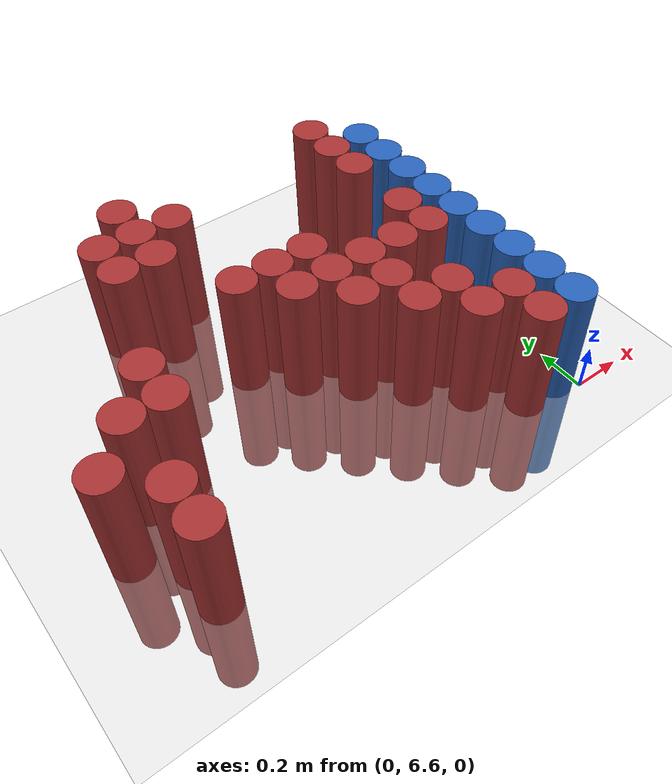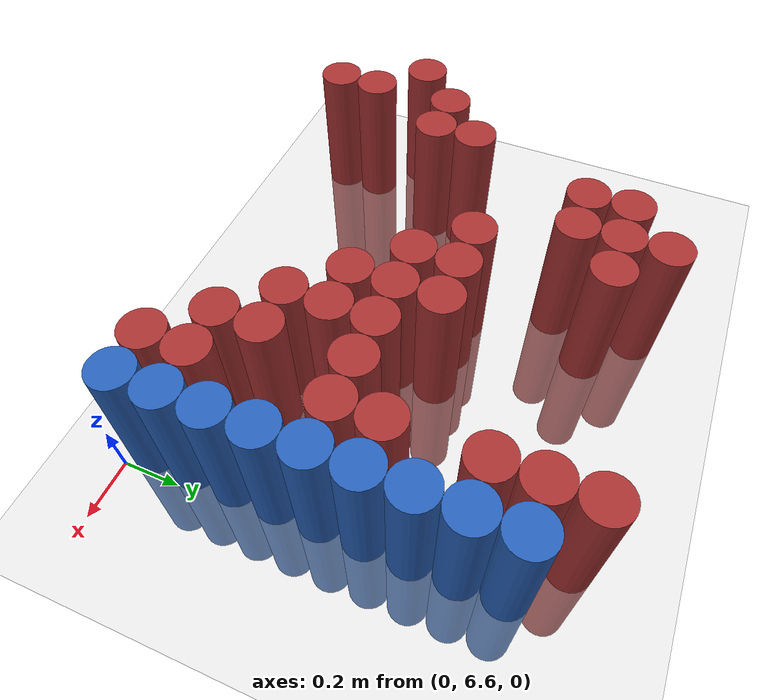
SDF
<sdf version="1.6">
 <world name="default">
  <model name="ground_plane">
   <static>1</static>
   <link name="link">
    <collision name="collision">
     <geometry><plane><normal>0 0 1</normal><size>100 100</size></plane></geometry>
     <surface><friction><ode><mu>100</mu><mu2>50</mu2></ode></friction></surface>
    </collision>
    <visual name="visual">
     <cast_shadows>0</cast_shadows>
     <geometry><plane><normal>0 0 1</normal><size>100 100</size></plane></geometry>
     <material>
      <script><uri>file://media/materials/scripts/gazebo.material</uri><name>Gazebo/Grey</name></script>
     </material>
    </visual>
   </link>
  </model>
  <model name="unit_cylinder_210">
   <static>1</static>
   <pose>-1.725000 6.975000 0.000000 0.000000 0.000000 0.000000</pose>
   <link name="link">
    <inertial>
     <mass>1</mass>
     <inertia><ixx>0.145833</ixx><ixy>0</ixy><ixz>0</ixz><iyy>0.145833</iyy><iyz>0</iyz><izz>0.125</izz></inertia>
    </inertial>
    <collision name="collision">
     <geometry><cylinder><radius>0.075000</radius><length>1</length></cylinder></geometry>
    </collision>
    <visual name="visual">
     <geometry><cylinder><radius>0.075000</radius><length>1</length></cylinder></geometry>
     <material>
      <ambient>0.648000 0.192000 0.192000 1</ambient>
      <diffuse>0.648000 0.192000 0.192000 1</diffuse>
     </material>
     <material>
      <script><name>Gazebo/Grey</name><uri>file://media/materials/scripts/gazebo.material</uri></script>
     </material>
    </visual>
    <sensor name="sensor_contact" type="contact"><contact><collision>collision</collision></contact></sensor>
   </link>
   <plugin filename="gz-sim-touchplugin-system" name="gz::sim::systems::TouchPlugin">
    <target>robot</target>
    <namespace>robot</namespace>
    <time>0.001</time>
    <enabled>true</enabled>
   </plugin>
  </model>
  <model name="unit_cylinder_213">
   <static>1</static>
   <pose>-1.575000 6.675000 0.000000 0.000000 0.000000 0.000000</pose>
   <link name="link">
    <inertial>
     <mass>1</mass>
     <inertia><ixx>0.145833</ixx><ixy>0</ixy><ixz>0</ixz><iyy>0.145833</iyy><iyz>0</iyz><izz>0.125</izz></inertia>
    </inertial>
    <collision name="collision">
     <geometry><cylinder><radius>0.075000</radius><length>1</length></cylinder></geometry>
    </collision>
    <visual name="visual">
     <geometry><cylinder><radius>0.075000</radius><length>1</length></cylinder></geometry>
     <material>
      <ambient>0.648000 0.192000 0.192000 1</ambient>
      <diffuse>0.648000 0.192000 0.192000 1</diffuse>
     </material>
     <material>
      <script><name>Gazebo/Grey</name><uri>file://media/materials/scripts/gazebo.material</uri></script>
     </material>
    </visual>
    <sensor name="sensor_contact" type="contact"><contact><collision>collision</collision></contact></sensor>
   </link>
   <plugin filename="gz-sim-touchplugin-system" name="gz::sim::systems::TouchPlugin">
    <target>robot</target>
    <namespace>robot</namespace>
    <time>0.001</time>
    <enabled>true</enabled>
   </plugin>
  </model>
  <model name="unit_cylinder_214">
   <static>1</static>
   <pose>-1.575000 6.825000 0.000000 0.000000 0.000000 0.000000</pose>
   <link name="link">
    <inertial>
     <mass>1</mass>
     <inertia><ixx>0.145833</ixx><ixy>0</ixy><ixz>0</ixz><iyy>0.145833</iyy><iyz>0</iyz><izz>0.125</izz></inertia>
    </inertial>
    <collision name="collision">
     <geometry><cylinder><radius>0.075000</radius><length>1</length></cylinder></geometry>
    </collision>
    <visual name="visual">
     <geometry><cylinder><radius>0.075000</radius><length>1</length></cylinder></geometry>
     <material>
      <ambient>0.648000 0.192000 0.192000 1</ambient>
      <diffuse>0.648000 0.192000 0.192000 1</diffuse>
     </material>
     <material>
      <script><name>Gazebo/Grey</name><uri>file://media/materials/scripts/gazebo.material</uri></script>
     </material>
    </visual>
    <sensor name="sensor_contact" type="contact"><contact><collision>collision</collision></contact></sensor>
   </link>
   <plugin filename="gz-sim-touchplugin-system" name="gz::sim::systems::TouchPlugin">
    <target>robot</target>
    <namespace>robot</namespace>
    <time>0.001</time>
    <enabled>true</enabled>
   </plugin>
  </model>
  <model name="unit_cylinder_215">
   <static>1</static>
   <pose>-1.575000 7.125000 0.000000 0.000000 0.000000 0.000000</pose>
   <link name="link">
    <inertial>
     <mass>1</mass>
     <inertia><ixx>0.145833</ixx><ixy>0</ixy><ixz>0</ixz><iyy>0.145833</iyy><iyz>0</iyz><izz>0.125</izz></inertia>
    </inertial>
    <collision name="collision">
     <geometry><cylinder><radius>0.075000</radius><length>1</length></cylinder></geometry>
    </collision>
    <visual name="visual">
     <geometry><cylinder><radius>0.075000</radius><length>1</length></cylinder></geometry>
     <material>
      <ambient>0.648000 0.192000 0.192000 1</ambient>
      <diffuse>0.648000 0.192000 0.192000 1</diffuse>
     </material>
     <material>
      <script><name>Gazebo/Grey</name><uri>file://media/materials/scripts/gazebo.material</uri></script>
     </material>
    </visual>
    <sensor name="sensor_contact" type="contact"><contact><collision>collision</collision></contact></sensor>
   </link>
   <plugin filename="gz-sim-touchplugin-system" name="gz::sim::systems::TouchPlugin">
    <target>robot</target>
    <namespace>robot</namespace>
    <time>0.001</time>
    <enabled>true</enabled>
   </plugin>
  </model>
  <model name="unit_cylinder_220">
   <static>1</static>
   <pose>-1.425000 7.125000 0.000000 0.000000 0.000000 0.000000</pose>
   <link name="link">
    <inertial>
     <mass>1</mass>
     <inertia><ixx>0.145833</ixx><ixy>0</ixy><ixz>0</ixz><iyy>0.145833</iyy><iyz>0</iyz><izz>0.125</izz></inertia>
    </inertial>
    <collision name="collision">
     <geometry><cylinder><radius>0.075000</radius><length>1</length></cylinder></geometry>
    </collision>
    <visual name="visual">
     <geometry><cylinder><radius>0.075000</radius><length>1</length></cylinder></geometry>
     <material>
      <ambient>0.648000 0.192000 0.192000 1</ambient>
      <diffuse>0.648000 0.192000 0.192000 1</diffuse>
     </material>
     <material>
      <script><name>Gazebo/Grey</name><uri>file://media/materials/scripts/gazebo.material</uri></script>
     </material>
    </visual>
    <sensor name="sensor_contact" type="contact"><contact><collision>collision</collision></contact></sensor>
   </link>
   <plugin filename="gz-sim-touchplugin-system" name="gz::sim::systems::TouchPlugin">
    <target>robot</target>
    <namespace>robot</namespace>
    <time>0.001</time>
    <enabled>true</enabled>
   </plugin>
  </model>
  <model name="unit_cylinder_221">
   <static>1</static>
   <pose>-1.425000 7.275000 0.000000 0.000000 0.000000 0.000000</pose>
   <link name="link">
    <inertial>
     <mass>1</mass>
     <inertia><ixx>0.145833</ixx><ixy>0</ixy><ixz>0</ixz><iyy>0.145833</iyy><iyz>0</iyz><izz>0.125</izz></inertia>
    </inertial>
    <collision name="collision">
     <geometry><cylinder><radius>0.075000</radius><length>1</length></cylinder></geometry>
    </collision>
    <visual name="visual">
     <geometry><cylinder><radius>0.075000</radius><length>1</length></cylinder></geometry>
     <material>
      <ambient>0.648000 0.192000 0.192000 1</ambient>
      <diffuse>0.648000 0.192000 0.192000 1</diffuse>
     </material>
     <material>
      <script><name>Gazebo/Grey</name><uri>file://media/materials/scripts/gazebo.material</uri></script>
     </material>
    </visual>
    <sensor name="sensor_contact" type="contact"><contact><collision>collision</collision></contact></sensor>
   </link>
   <plugin filename="gz-sim-touchplugin-system" name="gz::sim::systems::TouchPlugin">
    <target>robot</target>
    <namespace>robot</namespace>
    <time>0.001</time>
    <enabled>true</enabled>
   </plugin>
  </model>
  <model name="unit_cylinder_228">
   <static>1</static>
   <pose>-1.275000 7.725000 0.000000 0.000000 0.000000 0.000000</pose>
   <link name="link">
    <inertial>
     <mass>1</mass>
     <inertia><ixx>0.145833</ixx><ixy>0</ixy><ixz>0</ixz><iyy>0.145833</iyy><iyz>0</iyz><izz>0.125</izz></inertia>
    </inertial>
    <collision name="collision">
     <geometry><cylinder><radius>0.075000</radius><length>1</length></cylinder></geometry>
    </collision>
    <visual name="visual">
     <geometry><cylinder><radius>0.075000</radius><length>1</length></cylinder></geometry>
     <material>
      <ambient>0.648000 0.192000 0.192000 1</ambient>
      <diffuse>0.648000 0.192000 0.192000 1</diffuse>
     </material>
     <material>
      <script><name>Gazebo/Grey</name><uri>file://media/materials/scripts/gazebo.material</uri></script>
     </material>
    </visual>
    <sensor name="sensor_contact" type="contact"><contact><collision>collision</collision></contact></sensor>
   </link>
   <plugin filename="gz-sim-touchplugin-system" name="gz::sim::systems::TouchPlugin">
    <target>robot</target>
    <namespace>robot</namespace>
    <time>0.001</time>
    <enabled>true</enabled>
   </plugin>
  </model>
  <model name="unit_cylinder_229">
   <static>1</static>
   <pose>-1.275000 7.875000 0.000000 0.000000 0.000000 0.000000</pose>
   <link name="link">
    <inertial>
     <mass>1</mass>
     <inertia><ixx>0.145833</ixx><ixy>0</ixy><ixz>0</ixz><iyy>0.145833</iyy><iyz>0</iyz><izz>0.125</izz></inertia>
    </inertial>
    <collision name="collision">
     <geometry><cylinder><radius>0.075000</radius><length>1</length></cylinder></geometry>
    </collision>
    <visual name="visual">
     <geometry><cylinder><radius>0.075000</radius><length>1</length></cylinder></geometry>
     <material>
      <ambient>0.648000 0.192000 0.192000 1</ambient>
      <diffuse>0.648000 0.192000 0.192000 1</diffuse>
     </material>
     <material>
      <script><name>Gazebo/Grey</name><uri>file://media/materials/scripts/gazebo.material</uri></script>
     </material>
    </visual>
    <sensor name="sensor_contact" type="contact"><contact><collision>collision</collision></contact></sensor>
   </link>
   <plugin filename="gz-sim-touchplugin-system" name="gz::sim::systems::TouchPlugin">
    <target>robot</target>
    <namespace>robot</namespace>
    <time>0.001</time>
    <enabled>true</enabled>
   </plugin>
  </model>
  <model name="unit_cylinder_235">
   <static>1</static>
   <pose>-1.125000 7.725000 0.000000 0.000000 0.000000 0.000000</pose>
   <link name="link">
    <inertial>
     <mass>1</mass>
     <inertia><ixx>0.145833</ixx><ixy>0</ixy><ixz>0</ixz><iyy>0.145833</iyy><iyz>0</iyz><izz>0.125</izz></inertia>
    </inertial>
    <collision name="collision">
     <geometry><cylinder><radius>0.075000</radius><length>1</length></cylinder></geometry>
    </collision>
    <visual name="visual">
     <geometry><cylinder><radius>0.075000</radius><length>1</length></cylinder></geometry>
     <material>
      <ambient>0.648000 0.192000 0.192000 1</ambient>
      <diffuse>0.648000 0.192000 0.192000 1</diffuse>
     </material>
     <material>
      <script><name>Gazebo/Grey</name><uri>file://media/materials/scripts/gazebo.material</uri></script>
     </material>
    </visual>
    <sensor name="sensor_contact" type="contact"><contact><collision>collision</collision></contact></sensor>
   </link>
   <plugin filename="gz-sim-touchplugin-system" name="gz::sim::systems::TouchPlugin">
    <target>robot</target>
    <namespace>robot</namespace>
    <time>0.001</time>
    <enabled>true</enabled>
   </plugin>
  </model>
  <model name="unit_cylinder_236">
   <static>1</static>
   <pose>-1.125000 7.875000 0.000000 0.000000 0.000000 0.000000</pose>
   <link name="link">
    <inertial>
     <mass>1</mass>
     <inertia><ixx>0.145833</ixx><ixy>0</ixy><ixz>0</ixz><iyy>0.145833</iyy><iyz>0</iyz><izz>0.125</izz></inertia>
    </inertial>
    <collision name="collision">
     <geometry><cylinder><radius>0.075000</radius><length>1</length></cylinder></geometry>
    </collision>
    <visual name="visual">
     <geometry><cylinder><radius>0.075000</radius><length>1</length></cylinder></geometry>
     <material>
      <ambient>0.648000 0.192000 0.192000 1</ambient>
      <diffuse>0.648000 0.192000 0.192000 1</diffuse>
     </material>
     <material>
      <script><name>Gazebo/Grey</name><uri>file://media/materials/scripts/gazebo.material</uri></script>
     </material>
    </visual>
    <sensor name="sensor_contact" type="contact"><contact><collision>collision</collision></contact></sensor>
   </link>
   <plugin filename="gz-sim-touchplugin-system" name="gz::sim::systems::TouchPlugin">
    <target>robot</target>
    <namespace>robot</namespace>
    <time>0.001</time>
    <enabled>true</enabled>
   </plugin>
  </model>
  <model name="unit_cylinder_237">
   <static>1</static>
   <pose>-1.125000 8.025000 0.000000 0.000000 0.000000 0.000000</pose>
   <link name="link">
    <inertial>
     <mass>1</mass>
     <inertia><ixx>0.145833</ixx><ixy>0</ixy><ixz>0</ixz><iyy>0.145833</iyy><iyz>0</iyz><izz>0.125</izz></inertia>
    </inertial>
    <collision name="collision">
     <geometry><cylinder><radius>0.075000</radius><length>1</length></cylinder></geometry>
    </collision>
    <visual name="visual">
     <geometry><cylinder><radius>0.075000</radius><length>1</length></cylinder></geometry>
     <material>
      <ambient>0.648000 0.192000 0.192000 1</ambient>
      <diffuse>0.648000 0.192000 0.192000 1</diffuse>
     </material>
     <material>
      <script><name>Gazebo/Grey</name><uri>file://media/materials/scripts/gazebo.material</uri></script>
     </material>
    </visual>
    <sensor name="sensor_contact" type="contact"><contact><collision>collision</collision></contact></sensor>
   </link>
   <plugin filename="gz-sim-touchplugin-system" name="gz::sim::systems::TouchPlugin">
    <target>robot</target>
    <namespace>robot</namespace>
    <time>0.001</time>
    <enabled>true</enabled>
   </plugin>
  </model>
  <model name="unit_cylinder_241">
   <static>1</static>
   <pose>-0.975000 7.425000 0.000000 0.000000 0.000000 0.000000</pose>
   <link name="link">
    <inertial>
     <mass>1</mass>
     <inertia><ixx>0.145833</ixx><ixy>0</ixy><ixz>0</ixz><iyy>0.145833</iyy><iyz>0</iyz><izz>0.125</izz></inertia>
    </inertial>
    <collision name="collision">
     <geometry><cylinder><radius>0.075000</radius><length>1</length></cylinder></geometry>
    </collision>
    <visual name="visual">
     <geometry><cylinder><radius>0.075000</radius><length>1</length></cylinder></geometry>
     <material>
      <ambient>0.648000 0.192000 0.192000 1</ambient>
      <diffuse>0.648000 0.192000 0.192000 1</diffuse>
     </material>
     <material>
      <script><name>Gazebo/Grey</name><uri>file://media/materials/scripts/gazebo.material</uri></script>
     </material>
    </visual>
    <sensor name="sensor_contact" type="contact"><contact><collision>collision</collision></contact></sensor>
   </link>
   <plugin filename="gz-sim-touchplugin-system" name="gz::sim::systems::TouchPlugin">
    <target>robot</target>
    <namespace>robot</namespace>
    <time>0.001</time>
    <enabled>true</enabled>
   </plugin>
  </model>
  <model name="unit_cylinder_242">
   <static>1</static>
   <pose>-0.975000 7.875000 0.000000 0.000000 0.000000 0.000000</pose>
   <link name="link">
    <inertial>
     <mass>1</mass>
     <inertia><ixx>0.145833</ixx><ixy>0</ixy><ixz>0</ixz><iyy>0.145833</iyy><iyz>0</iyz><izz>0.125</izz></inertia>
    </inertial>
    <collision name="collision">
     <geometry><cylinder><radius>0.075000</radius><length>1</length></cylinder></geometry>
    </collision>
    <visual name="visual">
     <geometry><cylinder><radius>0.075000</radius><length>1</length></cylinder></geometry>
     <material>
      <ambient>0.648000 0.192000 0.192000 1</ambient>
      <diffuse>0.648000 0.192000 0.192000 1</diffuse>
     </material>
     <material>
      <script><name>Gazebo/Grey</name><uri>file://media/materials/scripts/gazebo.material</uri></script>
     </material>
    </visual>
    <sensor name="sensor_contact" type="contact"><contact><collision>collision</collision></contact></sensor>
   </link>
   <plugin filename="gz-sim-touchplugin-system" name="gz::sim::systems::TouchPlugin">
    <target>robot</target>
    <namespace>robot</namespace>
    <time>0.001</time>
    <enabled>true</enabled>
   </plugin>
  </model>
  <model name="unit_cylinder_249">
   <static>1</static>
   <pose>-0.825000 7.275000 0.000000 0.000000 0.000000 0.000000</pose>
   <link name="link">
    <inertial>
     <mass>1</mass>
     <inertia><ixx>0.145833</ixx><ixy>0</ixy><ixz>0</ixz><iyy>0.145833</iyy><iyz>0</iyz><izz>0.125</izz></inertia>
    </inertial>
    <collision name="collision">
     <geometry><cylinder><radius>0.075000</radius><length>1</length></cylinder></geometry>
    </collision>
    <visual name="visual">
     <geometry><cylinder><radius>0.075000</radius><length>1</length></cylinder></geometry>
     <material>
      <ambient>0.648000 0.192000 0.192000 1</ambient>
      <diffuse>0.648000 0.192000 0.192000 1</diffuse>
     </material>
     <material>
      <script><name>Gazebo/Grey</name><uri>file://media/materials/scripts/gazebo.material</uri></script>
     </material>
    </visual>
    <sensor name="sensor_contact" type="contact"><contact><collision>collision</collision></contact></sensor>
   </link>
   <plugin filename="gz-sim-touchplugin-system" name="gz::sim::systems::TouchPlugin">
    <target>robot</target>
    <namespace>robot</namespace>
    <time>0.001</time>
    <enabled>true</enabled>
   </plugin>
  </model>
  <model name="unit_cylinder_250">
   <static>1</static>
   <pose>-0.825000 7.425000 0.000000 0.000000 0.000000 0.000000</pose>
   <link name="link">
    <inertial>
     <mass>1</mass>
     <inertia><ixx>0.145833</ixx><ixy>0</ixy><ixz>0</ixz><iyy>0.145833</iyy><iyz>0</iyz><izz>0.125</izz></inertia>
    </inertial>
    <collision name="collision">
     <geometry><cylinder><radius>0.075000</radius><length>1</length></cylinder></geometry>
    </collision>
    <visual name="visual">
     <geometry><cylinder><radius>0.075000</radius><length>1</length></cylinder></geometry>
     <material>
      <ambient>0.648000 0.192000 0.192000 1</ambient>
      <diffuse>0.648000 0.192000 0.192000 1</diffuse>
     </material>
     <material>
      <script><name>Gazebo/Grey</name><uri>file://media/materials/scripts/gazebo.material</uri></script>
     </material>
    </visual>
    <sensor name="sensor_contact" type="contact"><contact><collision>collision</collision></contact></sensor>
   </link>
   <plugin filename="gz-sim-touchplugin-system" name="gz::sim::systems::TouchPlugin">
    <target>robot</target>
    <namespace>robot</namespace>
    <time>0.001</time>
    <enabled>true</enabled>
   </plugin>
  </model>
  <model name="unit_cylinder_253">
   <static>1</static>
   <pose>-0.675000 7.125000 0.000000 0.000000 0.000000 0.000000</pose>
   <link name="link">
    <inertial>
     <mass>1</mass>
     <inertia><ixx>0.145833</ixx><ixy>0</ixy><ixz>0</ixz><iyy>0.145833</iyy><iyz>0</iyz><izz>0.125</izz></inertia>
    </inertial>
    <collision name="collision">
     <geometry><cylinder><radius>0.075000</radius><length>1</length></cylinder></geometry>
    </collision>
    <visual name="visual">
     <geometry><cylinder><radius>0.075000</radius><length>1</length></cylinder></geometry>
     <material>
      <ambient>0.648000 0.192000 0.192000 1</ambient>
      <diffuse>0.648000 0.192000 0.192000 1</diffuse>
     </material>
     <material>
      <script><name>Gazebo/Grey</name><uri>file://media/materials/scripts/gazebo.material</uri></script>
     </material>
    </visual>
    <sensor name="sensor_contact" type="contact"><contact><collision>collision</collision></contact></sensor>
   </link>
   <plugin filename="gz-sim-touchplugin-system" name="gz::sim::systems::TouchPlugin">
    <target>robot</target>
    <namespace>robot</namespace>
    <time>0.001</time>
    <enabled>true</enabled>
   </plugin>
  </model>
  <model name="unit_cylinder_254">
   <static>1</static>
   <pose>-0.675000 7.275000 0.000000 0.000000 0.000000 0.000000</pose>
   <link name="link">
    <inertial>
     <mass>1</mass>
     <inertia><ixx>0.145833</ixx><ixy>0</ixy><ixz>0</ixz><iyy>0.145833</iyy><iyz>0</iyz><izz>0.125</izz></inertia>
    </inertial>
    <collision name="collision">
     <geometry><cylinder><radius>0.075000</radius><length>1</length></cylinder></geometry>
    </collision>
    <visual name="visual">
     <geometry><cylinder><radius>0.075000</radius><length>1</length></cylinder></geometry>
     <material>
      <ambient>0.648000 0.192000 0.192000 1</ambient>
      <diffuse>0.648000 0.192000 0.192000 1</diffuse>
     </material>
     <material>
      <script><name>Gazebo/Grey</name><uri>file://media/materials/scripts/gazebo.material</uri></script>
     </material>
    </visual>
    <sensor name="sensor_contact" type="contact"><contact><collision>collision</collision></contact></sensor>
   </link>
   <plugin filename="gz-sim-touchplugin-system" name="gz::sim::systems::TouchPlugin">
    <target>robot</target>
    <namespace>robot</namespace>
    <time>0.001</time>
    <enabled>true</enabled>
   </plugin>
  </model>
  <model name="unit_cylinder_255">
   <static>1</static>
   <pose>-0.675000 7.425000 0.000000 0.000000 0.000000 0.000000</pose>
   <link name="link">
    <inertial>
     <mass>1</mass>
     <inertia><ixx>0.145833</ixx><ixy>0</ixy><ixz>0</ixz><iyy>0.145833</iyy><iyz>0</iyz><izz>0.125</izz></inertia>
    </inertial>
    <collision name="collision">
     <geometry><cylinder><radius>0.075000</radius><length>1</length></cylinder></geometry>
    </collision>
    <visual name="visual">
     <geometry><cylinder><radius>0.075000</radius><length>1</length></cylinder></geometry>
     <material>
      <ambient>0.648000 0.192000 0.192000 1</ambient>
      <diffuse>0.648000 0.192000 0.192000 1</diffuse>
     </material>
     <material>
      <script><name>Gazebo/Grey</name><uri>file://media/materials/scripts/gazebo.material</uri></script>
     </material>
    </visual>
    <sensor name="sensor_contact" type="contact"><contact><collision>collision</collision></contact></sensor>
   </link>
   <plugin filename="gz-sim-touchplugin-system" name="gz::sim::systems::TouchPlugin">
    <target>robot</target>
    <namespace>robot</namespace>
    <time>0.001</time>
    <enabled>true</enabled>
   </plugin>
  </model>
  <model name="unit_cylinder_260">
   <static>1</static>
   <pose>-0.525000 6.975000 0.000000 0.000000 0.000000 0.000000</pose>
   <link name="link">
    <inertial>
     <mass>1</mass>
     <inertia><ixx>0.145833</ixx><ixy>0</ixy><ixz>0</ixz><iyy>0.145833</iyy><iyz>0</iyz><izz>0.125</izz></inertia>
    </inertial>
    <collision name="collision">
     <geometry><cylinder><radius>0.075000</radius><length>1</length></cylinder></geometry>
    </collision>
    <visual name="visual">
     <geometry><cylinder><radius>0.075000</radius><length>1</length></cylinder></geometry>
     <material>
      <ambient>0.648000 0.192000 0.192000 1</ambient>
      <diffuse>0.648000 0.192000 0.192000 1</diffuse>
     </material>
     <material>
      <script><name>Gazebo/Grey</name><uri>file://media/materials/scripts/gazebo.material</uri></script>
     </material>
    </visual>
    <sensor name="sensor_contact" type="contact"><contact><collision>collision</collision></contact></sensor>
   </link>
   <plugin filename="gz-sim-touchplugin-system" name="gz::sim::systems::TouchPlugin">
    <target>robot</target>
    <namespace>robot</namespace>
    <time>0.001</time>
    <enabled>true</enabled>
   </plugin>
  </model>
  <model name="unit_cylinder_261">
   <static>1</static>
   <pose>-0.525000 7.125000 0.000000 0.000000 0.000000 0.000000</pose>
   <link name="link">
    <inertial>
     <mass>1</mass>
     <inertia><ixx>0.145833</ixx><ixy>0</ixy><ixz>0</ixz><iyy>0.145833</iyy><iyz>0</iyz><izz>0.125</izz></inertia>
    </inertial>
    <collision name="collision">
     <geometry><cylinder><radius>0.075000</radius><length>1</length></cylinder></geometry>
    </collision>
    <visual name="visual">
     <geometry><cylinder><radius>0.075000</radius><length>1</length></cylinder></geometry>
     <material>
      <ambient>0.648000 0.192000 0.192000 1</ambient>
      <diffuse>0.648000 0.192000 0.192000 1</diffuse>
     </material>
     <material>
      <script><name>Gazebo/Grey</name><uri>file://media/materials/scripts/gazebo.material</uri></script>
     </material>
    </visual>
    <sensor name="sensor_contact" type="contact"><contact><collision>collision</collision></contact></sensor>
   </link>
   <plugin filename="gz-sim-touchplugin-system" name="gz::sim::systems::TouchPlugin">
    <target>robot</target>
    <namespace>robot</namespace>
    <time>0.001</time>
    <enabled>true</enabled>
   </plugin>
  </model>
  <model name="unit_cylinder_262">
   <static>1</static>
   <pose>-0.525000 7.275000 0.000000 0.000000 0.000000 0.000000</pose>
   <link name="link">
    <inertial>
     <mass>1</mass>
     <inertia><ixx>0.145833</ixx><ixy>0</ixy><ixz>0</ixz><iyy>0.145833</iyy><iyz>0</iyz><izz>0.125</izz></inertia>
    </inertial>
    <collision name="collision">
     <geometry><cylinder><radius>0.075000</radius><length>1</length></cylinder></geometry>
    </collision>
    <visual name="visual">
     <geometry><cylinder><radius>0.075000</radius><length>1</length></cylinder></geometry>
     <material>
      <ambient>0.648000 0.192000 0.192000 1</ambient>
      <diffuse>0.648000 0.192000 0.192000 1</diffuse>
     </material>
     <material>
      <script><name>Gazebo/Grey</name><uri>file://media/materials/scripts/gazebo.material</uri></script>
     </material>
    </visual>
    <sensor name="sensor_contact" type="contact"><contact><collision>collision</collision></contact></sensor>
   </link>
   <plugin filename="gz-sim-touchplugin-system" name="gz::sim::systems::TouchPlugin">
    <target>robot</target>
    <namespace>robot</namespace>
    <time>0.001</time>
    <enabled>true</enabled>
   </plugin>
  </model>
  <model name="unit_cylinder_266">
   <static>1</static>
   <pose>-0.375000 6.825000 0.000000 0.000000 0.000000 0.000000</pose>
   <link name="link">
    <inertial>
     <mass>1</mass>
     <inertia><ixx>0.145833</ixx><ixy>0</ixy><ixz>0</ixz><iyy>0.145833</iyy><iyz>0</iyz><izz>0.125</izz></inertia>
    </inertial>
    <collision name="collision">
     <geometry><cylinder><radius>0.075000</radius><length>1</length></cylinder></geometry>
    </collision>
    <visual name="visual">
     <geometry><cylinder><radius>0.075000</radius><length>1</length></cylinder></geometry>
     <material>
      <ambient>0.648000 0.192000 0.192000 1</ambient>
      <diffuse>0.648000 0.192000 0.192000 1</diffuse>
     </material>
     <material>
      <script><name>Gazebo/Grey</name><uri>file://media/materials/scripts/gazebo.material</uri></script>
     </material>
    </visual>
    <sensor name="sensor_contact" type="contact"><contact><collision>collision</collision></contact></sensor>
   </link>
   <plugin filename="gz-sim-touchplugin-system" name="gz::sim::systems::TouchPlugin">
    <target>robot</target>
    <namespace>robot</namespace>
    <time>0.001</time>
    <enabled>true</enabled>
   </plugin>
  </model>
  <model name="unit_cylinder_267">
   <static>1</static>
   <pose>-0.375000 6.975000 0.000000 0.000000 0.000000 0.000000</pose>
   <link name="link">
    <inertial>
     <mass>1</mass>
     <inertia><ixx>0.145833</ixx><ixy>0</ixy><ixz>0</ixz><iyy>0.145833</iyy><iyz>0</iyz><izz>0.125</izz></inertia>
    </inertial>
    <collision name="collision">
     <geometry><cylinder><radius>0.075000</radius><length>1</length></cylinder></geometry>
    </collision>
    <visual name="visual">
     <geometry><cylinder><radius>0.075000</radius><length>1</length></cylinder></geometry>
     <material>
      <ambient>0.648000 0.192000 0.192000 1</ambient>
      <diffuse>0.648000 0.192000 0.192000 1</diffuse>
     </material>
     <material>
      <script><name>Gazebo/Grey</name><uri>file://media/materials/scripts/gazebo.material</uri></script>
     </material>
    </visual>
    <sensor name="sensor_contact" type="contact"><contact><collision>collision</collision></contact></sensor>
   </link>
   <plugin filename="gz-sim-touchplugin-system" name="gz::sim::systems::TouchPlugin">
    <target>robot</target>
    <namespace>robot</namespace>
    <time>0.001</time>
    <enabled>true</enabled>
   </plugin>
  </model>
  <model name="unit_cylinder_268">
   <static>1</static>
   <pose>-0.375000 7.275000 0.000000 0.000000 0.000000 0.000000</pose>
   <link name="link">
    <inertial>
     <mass>1</mass>
     <inertia><ixx>0.145833</ixx><ixy>0</ixy><ixz>0</ixz><iyy>0.145833</iyy><iyz>0</iyz><izz>0.125</izz></inertia>
    </inertial>
    <collision name="collision">
     <geometry><cylinder><radius>0.075000</radius><length>1</length></cylinder></geometry>
    </collision>
    <visual name="visual">
     <geometry><cylinder><radius>0.075000</radius><length>1</length></cylinder></geometry>
     <material>
      <ambient>0.648000 0.192000 0.192000 1</ambient>
      <diffuse>0.648000 0.192000 0.192000 1</diffuse>
     </material>
     <material>
      <script><name>Gazebo/Grey</name><uri>file://media/materials/scripts/gazebo.material</uri></script>
     </material>
    </visual>
    <sensor name="sensor_contact" type="contact"><contact><collision>collision</collision></contact></sensor>
   </link>
   <plugin filename="gz-sim-touchplugin-system" name="gz::sim::systems::TouchPlugin">
    <target>robot</target>
    <namespace>robot</namespace>
    <time>0.001</time>
    <enabled>true</enabled>
   </plugin>
  </model>
  <model name="unit_cylinder_277">
   <static>1</static>
   <pose>-0.225000 6.675000 0.000000 0.000000 0.000000 0.000000</pose>
   <link name="link">
    <inertial>
     <mass>1</mass>
     <inertia><ixx>0.145833</ixx><ixy>0</ixy><ixz>0</ixz><iyy>0.145833</iyy><iyz>0</iyz><izz>0.125</izz></inertia>
    </inertial>
    <collision name="collision">
     <geometry><cylinder><radius>0.075000</radius><length>1</length></cylinder></geometry>
    </collision>
    <visual name="visual">
     <geometry><cylinder><radius>0.075000</radius><length>1</length></cylinder></geometry>
     <material>
      <ambient>0.648000 0.192000 0.192000 1</ambient>
      <diffuse>0.648000 0.192000 0.192000 1</diffuse>
     </material>
     <material>
      <script><name>Gazebo/Grey</name><uri>file://media/materials/scripts/gazebo.material</uri></script>
     </material>
    </visual>
    <sensor name="sensor_contact" type="contact"><contact><collision>collision</collision></contact></sensor>
   </link>
   <plugin filename="gz-sim-touchplugin-system" name="gz::sim::systems::TouchPlugin">
    <target>robot</target>
    <namespace>robot</namespace>
    <time>0.001</time>
    <enabled>true</enabled>
   </plugin>
  </model>
  <model name="unit_cylinder_278">
   <static>1</static>
   <pose>-0.225000 6.825000 0.000000 0.000000 0.000000 0.000000</pose>
   <link name="link">
    <inertial>
     <mass>1</mass>
     <inertia><ixx>0.145833</ixx><ixy>0</ixy><ixz>0</ixz><iyy>0.145833</iyy><iyz>0</iyz><izz>0.125</izz></inertia>
    </inertial>
    <collision name="collision">
     <geometry><cylinder><radius>0.075000</radius><length>1</length></cylinder></geometry>
    </collision>
    <visual name="visual">
     <geometry><cylinder><radius>0.075000</radius><length>1</length></cylinder></geometry>
     <material>
      <ambient>0.648000 0.192000 0.192000 1</ambient>
      <diffuse>0.648000 0.192000 0.192000 1</diffuse>
     </material>
     <material>
      <script><name>Gazebo/Grey</name><uri>file://media/materials/scripts/gazebo.material</uri></script>
     </material>
    </visual>
    <sensor name="sensor_contact" type="contact"><contact><collision>collision</collision></contact></sensor>
   </link>
   <plugin filename="gz-sim-touchplugin-system" name="gz::sim::systems::TouchPlugin">
    <target>robot</target>
    <namespace>robot</namespace>
    <time>0.001</time>
    <enabled>true</enabled>
   </plugin>
  </model>
  <model name="unit_cylinder_279">
   <static>1</static>
   <pose>-0.225000 7.275000 0.000000 0.000000 0.000000 0.000000</pose>
   <link name="link">
    <inertial>
     <mass>1</mass>
     <inertia><ixx>0.145833</ixx><ixy>0</ixy><ixz>0</ixz><iyy>0.145833</iyy><iyz>0</iyz><izz>0.125</izz></inertia>
    </inertial>
    <collision name="collision">
     <geometry><cylinder><radius>0.075000</radius><length>1</length></cylinder></geometry>
    </collision>
    <visual name="visual">
     <geometry><cylinder><radius>0.075000</radius><length>1</length></cylinder></geometry>
     <material>
      <ambient>0.648000 0.192000 0.192000 1</ambient>
      <diffuse>0.648000 0.192000 0.192000 1</diffuse>
     </material>
     <material>
      <script><name>Gazebo/Grey</name><uri>file://media/materials/scripts/gazebo.material</uri></script>
     </material>
    </visual>
    <sensor name="sensor_contact" type="contact"><contact><collision>collision</collision></contact></sensor>
   </link>
   <plugin filename="gz-sim-touchplugin-system" name="gz::sim::systems::TouchPlugin">
    <target>robot</target>
    <namespace>robot</namespace>
    <time>0.001</time>
    <enabled>true</enabled>
   </plugin>
  </model>
  <model name="unit_cylinder_280">
   <static>1</static>
   <pose>-0.225000 7.425000 0.000000 0.000000 0.000000 0.000000</pose>
   <link name="link">
    <inertial>
     <mass>1</mass>
     <inertia><ixx>0.145833</ixx><ixy>0</ixy><ixz>0</ixz><iyy>0.145833</iyy><iyz>0</iyz><izz>0.125</izz></inertia>
    </inertial>
    <collision name="collision">
     <geometry><cylinder><radius>0.075000</radius><length>1</length></cylinder></geometry>
    </collision>
    <visual name="visual">
     <geometry><cylinder><radius>0.075000</radius><length>1</length></cylinder></geometry>
     <material>
      <ambient>0.648000 0.192000 0.192000 1</ambient>
      <diffuse>0.648000 0.192000 0.192000 1</diffuse>
     </material>
     <material>
      <script><name>Gazebo/Grey</name><uri>file://media/materials/scripts/gazebo.material</uri></script>
     </material>
    </visual>
    <sensor name="sensor_contact" type="contact"><contact><collision>collision</collision></contact></sensor>
   </link>
   <plugin filename="gz-sim-touchplugin-system" name="gz::sim::systems::TouchPlugin">
    <target>robot</target>
    <namespace>robot</namespace>
    <time>0.001</time>
    <enabled>true</enabled>
   </plugin>
  </model>
  <model name="unit_cylinder_281">
   <static>1</static>
   <pose>-0.225000 7.725000 0.000000 0.000000 0.000000 0.000000</pose>
   <link name="link">
    <inertial>
     <mass>1</mass>
     <inertia><ixx>0.145833</ixx><ixy>0</ixy><ixz>0</ixz><iyy>0.145833</iyy><iyz>0</iyz><izz>0.125</izz></inertia>
    </inertial>
    <collision name="collision">
     <geometry><cylinder><radius>0.075000</radius><length>1</length></cylinder></geometry>
    </collision>
    <visual name="visual">
     <geometry><cylinder><radius>0.075000</radius><length>1</length></cylinder></geometry>
     <material>
      <ambient>0.648000 0.192000 0.192000 1</ambient>
      <diffuse>0.648000 0.192000 0.192000 1</diffuse>
     </material>
     <material>
      <script><name>Gazebo/Grey</name><uri>file://media/materials/scripts/gazebo.material</uri></script>
     </material>
    </visual>
    <sensor name="sensor_contact" type="contact"><contact><collision>collision</collision></contact></sensor>
   </link>
   <plugin filename="gz-sim-touchplugin-system" name="gz::sim::systems::TouchPlugin">
    <target>robot</target>
    <namespace>robot</namespace>
    <time>0.001</time>
    <enabled>true</enabled>
   </plugin>
  </model>
  <model name="unit_cylinder_282">
   <static>1</static>
   <pose>-0.225000 7.875000 0.000000 0.000000 0.000000 0.000000</pose>
   <link name="link">
    <inertial>
     <mass>1</mass>
     <inertia><ixx>0.145833</ixx><ixy>0</ixy><ixz>0</ixz><iyy>0.145833</iyy><iyz>0</iyz><izz>0.125</izz></inertia>
    </inertial>
    <collision name="collision">
     <geometry><cylinder><radius>0.075000</radius><length>1</length></cylinder></geometry>
    </collision>
    <visual name="visual">
     <geometry><cylinder><radius>0.075000</radius><length>1</length></cylinder></geometry>
     <material>
      <ambient>0.648000 0.192000 0.192000 1</ambient>
      <diffuse>0.648000 0.192000 0.192000 1</diffuse>
     </material>
     <material>
      <script><name>Gazebo/Grey</name><uri>file://media/materials/scripts/gazebo.material</uri></script>
     </material>
    </visual>
    <sensor name="sensor_contact" type="contact"><contact><collision>collision</collision></contact></sensor>
   </link>
   <plugin filename="gz-sim-touchplugin-system" name="gz::sim::systems::TouchPlugin">
    <target>robot</target>
    <namespace>robot</namespace>
    <time>0.001</time>
    <enabled>true</enabled>
   </plugin>
  </model>
  <model name="unit_cylinder_283">
   <static>1</static>
   <pose>-0.225000 8.025000 0.000000 0.000000 0.000000 0.000000</pose>
   <link name="link">
    <inertial>
     <mass>1</mass>
     <inertia><ixx>0.145833</ixx><ixy>0</ixy><ixz>0</ixz><iyy>0.145833</iyy><iyz>0</iyz><izz>0.125</izz></inertia>
    </inertial>
    <collision name="collision">
     <geometry><cylinder><radius>0.075000</radius><length>1</length></cylinder></geometry>
    </collision>
    <visual name="visual">
     <geometry><cylinder><radius>0.075000</radius><length>1</length></cylinder></geometry>
     <material>
      <ambient>0.648000 0.192000 0.192000 1</ambient>
      <diffuse>0.648000 0.192000 0.192000 1</diffuse>
     </material>
     <material>
      <script><name>Gazebo/Grey</name><uri>file://media/materials/scripts/gazebo.material</uri></script>
     </material>
    </visual>
    <sensor name="sensor_contact" type="contact"><contact><collision>collision</collision></contact></sensor>
   </link>
   <plugin filename="gz-sim-touchplugin-system" name="gz::sim::systems::TouchPlugin">
    <target>robot</target>
    <namespace>robot</namespace>
    <time>0.001</time>
    <enabled>true</enabled>
   </plugin>
  </model>
  <model name="unit_cylinder_298">
   <static>1</static>
   <pose>-0.075000 6.675000 0.000000 0.000000 0.000000 0.000000</pose>
   <link name="link">
    <inertial>
     <mass>1</mass>
     <inertia><ixx>0.145833</ixx><ixy>0</ixy><ixz>0</ixz><iyy>0.145833</iyy><iyz>0</iyz><izz>0.125</izz></inertia>
    </inertial>
    <collision name="collision">
     <geometry><cylinder><radius>0.075000</radius><length>1</length></cylinder></geometry>
    </collision>
    <visual name="visual">
     <geometry><cylinder><radius>0.075000</radius><length>1</length></cylinder></geometry>
     <material>
      <ambient>0.152000 0.379000 0.720000 1</ambient>
      <diffuse>0.152000 0.379000 0.720000 1</diffuse>
     </material>
     <material>
      <script><name>Gazebo/Grey</name><uri>file://media/materials/scripts/gazebo.material</uri></script>
     </material>
    </visual>
    <sensor name="sensor_contact" type="contact"><contact><collision>collision</collision></contact></sensor>
   </link>
   <plugin filename="gz-sim-touchplugin-system" name="gz::sim::systems::TouchPlugin">
    <target>robot</target>
    <namespace>robot</namespace>
    <time>0.001</time>
    <enabled>true</enabled>
   </plugin>
  </model>
  <model name="unit_cylinder_299">
   <static>1</static>
   <pose>-0.075000 6.825000 0.000000 0.000000 0.000000 0.000000</pose>
   <link name="link">
    <inertial>
     <mass>1</mass>
     <inertia><ixx>0.145833</ixx><ixy>0</ixy><ixz>0</ixz><iyy>0.145833</iyy><iyz>0</iyz><izz>0.125</izz></inertia>
    </inertial>
    <collision name="collision">
     <geometry><cylinder><radius>0.075000</radius><length>1</length></cylinder></geometry>
    </collision>
    <visual name="visual">
     <geometry><cylinder><radius>0.075000</radius><length>1</length></cylinder></geometry>
     <material>
      <ambient>0.152000 0.379000 0.720000 1</ambient>
      <diffuse>0.152000 0.379000 0.720000 1</diffuse>
     </material>
     <material>
      <script><name>Gazebo/Grey</name><uri>file://media/materials/scripts/gazebo.material</uri></script>
     </material>
    </visual>
    <sensor name="sensor_contact" type="contact"><contact><collision>collision</collision></contact></sensor>
   </link>
   <plugin filename="gz-sim-touchplugin-system" name="gz::sim::systems::TouchPlugin">
    <target>robot</target>
    <namespace>robot</namespace>
    <time>0.001</time>
    <enabled>true</enabled>
   </plugin>
  </model>
  <model name="unit_cylinder_300">
   <static>1</static>
   <pose>-0.075000 6.975000 0.000000 0.000000 0.000000 0.000000</pose>
   <link name="link">
    <inertial>
     <mass>1</mass>
     <inertia><ixx>0.145833</ixx><ixy>0</ixy><ixz>0</ixz><iyy>0.145833</iyy><iyz>0</iyz><izz>0.125</izz></inertia>
    </inertial>
    <collision name="collision">
     <geometry><cylinder><radius>0.075000</radius><length>1</length></cylinder></geometry>
    </collision>
    <visual name="visual">
     <geometry><cylinder><radius>0.075000</radius><length>1</length></cylinder></geometry>
     <material>
      <ambient>0.152000 0.379000 0.720000 1</ambient>
      <diffuse>0.152000 0.379000 0.720000 1</diffuse>
     </material>
     <material>
      <script><name>Gazebo/Grey</name><uri>file://media/materials/scripts/gazebo.material</uri></script>
     </material>
    </visual>
    <sensor name="sensor_contact" type="contact"><contact><collision>collision</collision></contact></sensor>
   </link>
   <plugin filename="gz-sim-touchplugin-system" name="gz::sim::systems::TouchPlugin">
    <target>robot</target>
    <namespace>robot</namespace>
    <time>0.001</time>
    <enabled>true</enabled>
   </plugin>
  </model>
  <model name="unit_cylinder_301">
   <static>1</static>
   <pose>-0.075000 7.125000 0.000000 0.000000 0.000000 0.000000</pose>
   <link name="link">
    <inertial>
     <mass>1</mass>
     <inertia><ixx>0.145833</ixx><ixy>0</ixy><ixz>0</ixz><iyy>0.145833</iyy><iyz>0</iyz><izz>0.125</izz></inertia>
    </inertial>
    <collision name="collision">
     <geometry><cylinder><radius>0.075000</radius><length>1</length></cylinder></geometry>
    </collision>
    <visual name="visual">
     <geometry><cylinder><radius>0.075000</radius><length>1</length></cylinder></geometry>
     <material>
      <ambient>0.152000 0.379000 0.720000 1</ambient>
      <diffuse>0.152000 0.379000 0.720000 1</diffuse>
     </material>
     <material>
      <script><name>Gazebo/Grey</name><uri>file://media/materials/scripts/gazebo.material</uri></script>
     </material>
    </visual>
    <sensor name="sensor_contact" type="contact"><contact><collision>collision</collision></contact></sensor>
   </link>
   <plugin filename="gz-sim-touchplugin-system" name="gz::sim::systems::TouchPlugin">
    <target>robot</target>
    <namespace>robot</namespace>
    <time>0.001</time>
    <enabled>true</enabled>
   </plugin>
  </model>
  <model name="unit_cylinder_302">
   <static>1</static>
   <pose>-0.075000 7.275000 0.000000 0.000000 0.000000 0.000000</pose>
   <link name="link">
    <inertial>
     <mass>1</mass>
     <inertia><ixx>0.145833</ixx><ixy>0</ixy><ixz>0</ixz><iyy>0.145833</iyy><iyz>0</iyz><izz>0.125</izz></inertia>
    </inertial>
    <collision name="collision">
     <geometry><cylinder><radius>0.075000</radius><length>1</length></cylinder></geometry>
    </collision>
    <visual name="visual">
     <geometry><cylinder><radius>0.075000</radius><length>1</length></cylinder></geometry>
     <material>
      <ambient>0.152000 0.379000 0.720000 1</ambient>
      <diffuse>0.152000 0.379000 0.720000 1</diffuse>
     </material>
     <material>
      <script><name>Gazebo/Grey</name><uri>file://media/materials/scripts/gazebo.material</uri></script>
     </material>
    </visual>
    <sensor name="sensor_contact" type="contact"><contact><collision>collision</collision></contact></sensor>
   </link>
   <plugin filename="gz-sim-touchplugin-system" name="gz::sim::systems::TouchPlugin">
    <target>robot</target>
    <namespace>robot</namespace>
    <time>0.001</time>
    <enabled>true</enabled>
   </plugin>
  </model>
  <model name="unit_cylinder_303">
   <static>1</static>
   <pose>-0.075000 7.425000 0.000000 0.000000 0.000000 0.000000</pose>
   <link name="link">
    <inertial>
     <mass>1</mass>
     <inertia><ixx>0.145833</ixx><ixy>0</ixy><ixz>0</ixz><iyy>0.145833</iyy><iyz>0</iyz><izz>0.125</izz></inertia>
    </inertial>
    <collision name="collision">
     <geometry><cylinder><radius>0.075000</radius><length>1</length></cylinder></geometry>
    </collision>
    <visual name="visual">
     <geometry><cylinder><radius>0.075000</radius><length>1</length></cylinder></geometry>
     <material>
      <ambient>0.152000 0.379000 0.720000 1</ambient>
      <diffuse>0.152000 0.379000 0.720000 1</diffuse>
     </material>
     <material>
      <script><name>Gazebo/Grey</name><uri>file://media/materials/scripts/gazebo.material</uri></script>
     </material>
    </visual>
    <sensor name="sensor_contact" type="contact"><contact><collision>collision</collision></contact></sensor>
   </link>
   <plugin filename="gz-sim-touchplugin-system" name="gz::sim::systems::TouchPlugin">
    <target>robot</target>
    <namespace>robot</namespace>
    <time>0.001</time>
    <enabled>true</enabled>
   </plugin>
  </model>
  <model name="unit_cylinder_304">
   <static>1</static>
   <pose>-0.075000 7.575000 0.000000 0.000000 0.000000 0.000000</pose>
   <link name="link">
    <inertial>
     <mass>1</mass>
     <inertia><ixx>0.145833</ixx><ixy>0</ixy><ixz>0</ixz><iyy>0.145833</iyy><iyz>0</iyz><izz>0.125</izz></inertia>
    </inertial>
    <collision name="collision">
     <geometry><cylinder><radius>0.075000</radius><length>1</length></cylinder></geometry>
    </collision>
    <visual name="visual">
     <geometry><cylinder><radius>0.075000</radius><length>1</length></cylinder></geometry>
     <material>
      <ambient>0.152000 0.379000 0.720000 1</ambient>
      <diffuse>0.152000 0.379000 0.720000 1</diffuse>
     </material>
     <material>
      <script><name>Gazebo/Grey</name><uri>file://media/materials/scripts/gazebo.material</uri></script>
     </material>
    </visual>
    <sensor name="sensor_contact" type="contact"><contact><collision>collision</collision></contact></sensor>
   </link>
   <plugin filename="gz-sim-touchplugin-system" name="gz::sim::systems::TouchPlugin">
    <target>robot</target>
    <namespace>robot</namespace>
    <time>0.001</time>
    <enabled>true</enabled>
   </plugin>
  </model>
  <model name="unit_cylinder_305">
   <static>1</static>
   <pose>-0.075000 7.725000 0.000000 0.000000 0.000000 0.000000</pose>
   <link name="link">
    <inertial>
     <mass>1</mass>
     <inertia><ixx>0.145833</ixx><ixy>0</ixy><ixz>0</ixz><iyy>0.145833</iyy><iyz>0</iyz><izz>0.125</izz></inertia>
    </inertial>
    <collision name="collision">
     <geometry><cylinder><radius>0.075000</radius><length>1</length></cylinder></geometry>
    </collision>
    <visual name="visual">
     <geometry><cylinder><radius>0.075000</radius><length>1</length></cylinder></geometry>
     <material>
      <ambient>0.152000 0.379000 0.720000 1</ambient>
      <diffuse>0.152000 0.379000 0.720000 1</diffuse>
     </material>
     <material>
      <script><name>Gazebo/Grey</name><uri>file://media/materials/scripts/gazebo.material</uri></script>
     </material>
    </visual>
    <sensor name="sensor_contact" type="contact"><contact><collision>collision</collision></contact></sensor>
   </link>
   <plugin filename="gz-sim-touchplugin-system" name="gz::sim::systems::TouchPlugin">
    <target>robot</target>
    <namespace>robot</namespace>
    <time>0.001</time>
    <enabled>true</enabled>
   </plugin>
  </model>
  <model name="unit_cylinder_306">
   <static>1</static>
   <pose>-0.075000 7.875000 0.000000 0.000000 0.000000 0.000000</pose>
   <link name="link">
    <inertial>
     <mass>1</mass>
     <inertia><ixx>0.145833</ixx><ixy>0</ixy><ixz>0</ixz><iyy>0.145833</iyy><iyz>0</iyz><izz>0.125</izz></inertia>
    </inertial>
    <collision name="collision">
     <geometry><cylinder><radius>0.075000</radius><length>1</length></cylinder></geometry>
    </collision>
    <visual name="visual">
     <geometry><cylinder><radius>0.075000</radius><length>1</length></cylinder></geometry>
     <material>
      <ambient>0.152000 0.379000 0.720000 1</ambient>
      <diffuse>0.152000 0.379000 0.720000 1</diffuse>
     </material>
     <material>
      <script><name>Gazebo/Grey</name><uri>file://media/materials/scripts/gazebo.material</uri></script>
     </material>
    </visual>
    <sensor name="sensor_contact" type="contact"><contact><collision>collision</collision></contact></sensor>
   </link>
   <plugin filename="gz-sim-touchplugin-system" name="gz::sim::systems::TouchPlugin">
    <target>robot</target>
    <namespace>robot</namespace>
    <time>0.001</time>
    <enabled>true</enabled>
   </plugin>
  </model>
 </world>
</sdf>
